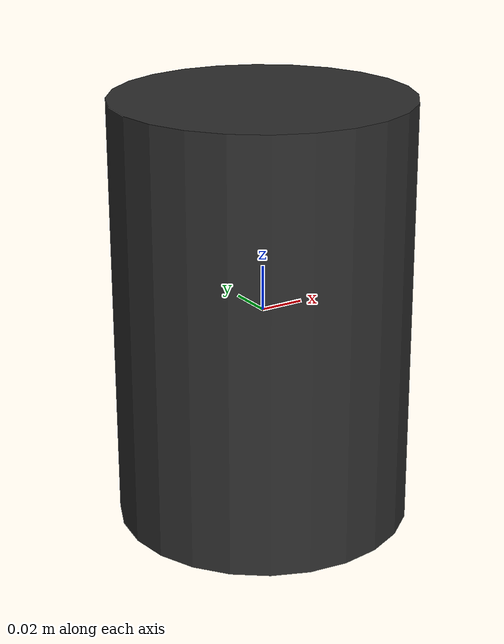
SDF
<?xml version="1.0" encoding="UTF-8"?>
<sdf version='1.8'>
  <model name="container">
    <link name="container_link">
      <pose>0 0 0 0 0 0</pose>
      <inertial>
        <pose>0 0 0 0 0 0</pose>
        <mass>0.6</mass>
        <inertia>
          <ixx>0.002449</ixx>
          <ixy>0.0</ixy>
          <ixz>0.0</ixz>
          <iyy>0.002449</iyy>
          <iyz>0.0</iyz>
          <izz>0.001287</izz>
        </inertia>
      </inertial>
      <velocity_decay>
        <linear>0.01</linear>
        <angular>0.005</angular>
      </velocity_decay>
      <collision name="container_collision_wall_0">
        <pose>0.0553647 0 0 0 0 1.57</pose>
        <geometry>
          <box>
            <size>0.07 0.01 0.19</size>
          </box>
        </geometry>
        <surface>
          <contact>
            <ode>
              <kp>1e6</kp>
              <kd>100.0</kd>
              <max_vel>0.01</max_vel>
              <min_depth>0.001</min_depth>
            </ode>
          </contact>
        </surface>
      </collision>
      <collision name="container_collision_wall_1">
        <pose>0 0.0553647 0 0 0 0</pose>
        <geometry>
          <box>
            <size>0.07 0.01 0.19</size>
          </box>
        </geometry>
        <surface>
          <contact>
            <ode>
              <kp>1e6</kp>
              <kd>100.0</kd>
              <max_vel>0.01</max_vel>
              <min_depth>0.001</min_depth>
            </ode>
          </contact>
        </surface>
      </collision>
      <collision name="container_collision_wall_2">
        <pose>-0.0553647 0 0 0 0 1.57</pose>
        <geometry>
          <box>
            <size>0.07 0.01 0.19</size>
          </box>
        </geometry>
        <surface>
          <contact>
            <ode>
              <kp>1e6</kp>
              <kd>100.0</kd>
              <max_vel>0.01</max_vel>
              <min_depth>0.001</min_depth>
            </ode>
          </contact>
        </surface>
      </collision>
      <collision name="container_collision_wall_3">
        <pose>0 -0.0553647 0 0 0 0</pose>
        <geometry>
          <box>
            <size>0.07 0.01 0.19</size>
          </box>
        </geometry>
        <surface>
          <contact>
            <ode>
              <kp>1e6</kp>
              <kd>100.0</kd>
              <max_vel>0.01</max_vel>
              <min_depth>0.001</min_depth>
            </ode>
          </contact>
        </surface>
      </collision>
      <visual name="container_visual">
        <geometry>
          <cylinder>
            <radius>0.0655</radius>
            <length>0.19</length>
          </cylinder>
        </geometry>
        <material>
          <ambient>0.175 0.175 0.175 1.0</ambient>
          <diffuse>0.175 0.175 0.175 1.0</diffuse>
        </material>
      </visual>

      <sensor name="barometer" type="air_pressure">
        <always_on>true</always_on>
        <update_rate>20</update_rate>
        <topic>/container/air_pressure</topic>
        <air_pressure>
          <pressure>
            <noise type="gaussian">
              <mean>0.0</mean>
              <stddev>1.0</stddev> <!-- 1 Pa resolution noise -->
            </noise>
          </pressure>
        </air_pressure>
      </sensor>
      <sensor name="altimeter" type="altimeter">
        <always_on>true</always_on>
        <update_rate>20</update_rate>
        <topic>/container/altimeter</topic>
        <altimeter>
          <vertical_position>
            <noise type="gaussian">
              <mean>0.0</mean>
              <stddev>0.1</stddev> <!-- 0.1m resolution noise -->
            </noise>
          </vertical_position>
        </altimeter>
      </sensor>
    </link>

    <plugin
      filename="gz-sim-pose-publisher-system"
      name="gz::sim::systems::PosePublisher">
      <publish_model_pose>true</publish_model_pose>
      <publish_link_pose>false</publish_link_pose>
      <use_pose_vector_msg>false</use_pose_vector_msg>
      <update_frequency>50</update_frequency>
    </plugin>

    <plugin
      filename="gz-sim-detachable-joint-system"
      name="gz::sim::systems::DetachableJoint">
      <parent_link>container_link</parent_link>
      <child_model>pocket_qube</child_model>
      <child_link>pocket_qube_link</child_link>
      <detach_topic>/rocket/pocket_qube/detach</detach_topic>
    </plugin>

    <plugin filename="libPayloadEjection.so" name="cansat::PayloadEjection">
      <payload_link_name>container_link</payload_link_name>
      <detach_topic>/rocket/container/detach</detach_topic>
      <trigger_mode>apogee</trigger_mode>
      <min_altitude>20.0</min_altitude>
      <apogee_drop_offset>1.0</apogee_drop_offset>
      <force>45.75</force>
      <duration>0.05</duration>
    </plugin>

    <plugin filename="libParachute.so" name="cansat::Parachute">
      <link_name>container_link</link_name>
      <trigger_mode>apogee</trigger_mode>
      <apogee_drop_offset>1.0</apogee_drop_offset>
      <cd>0.082</cd>
      <area>0.196</area> <!-- 50cm canopy -->
      <tether_offset>0.15</tether_offset> <!-- above CoM -->
      <angular_damping>0.95</angular_damping>
    </plugin>
  </model>
</sdf>
